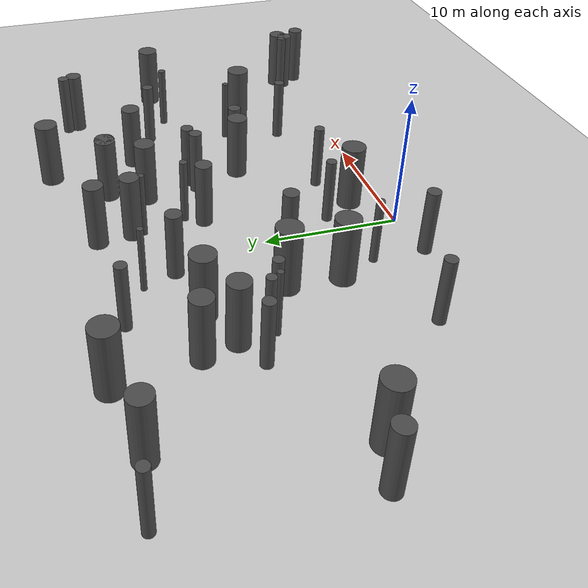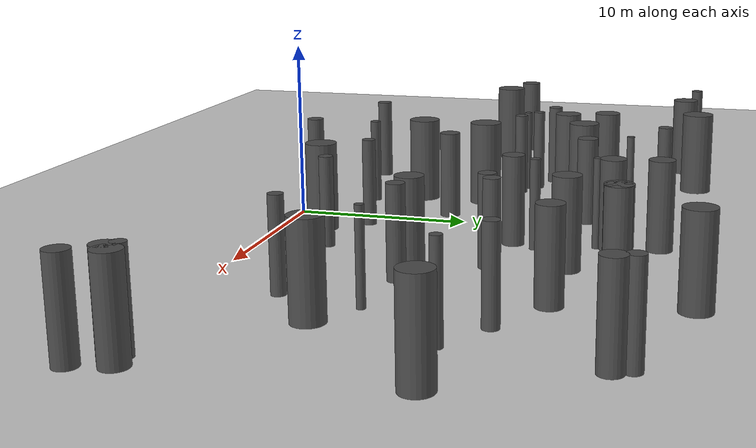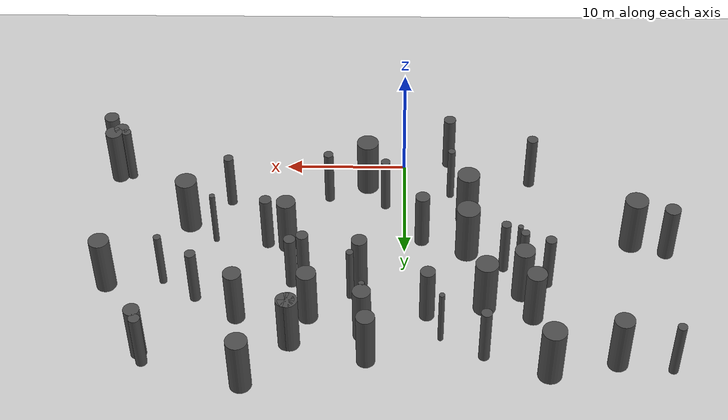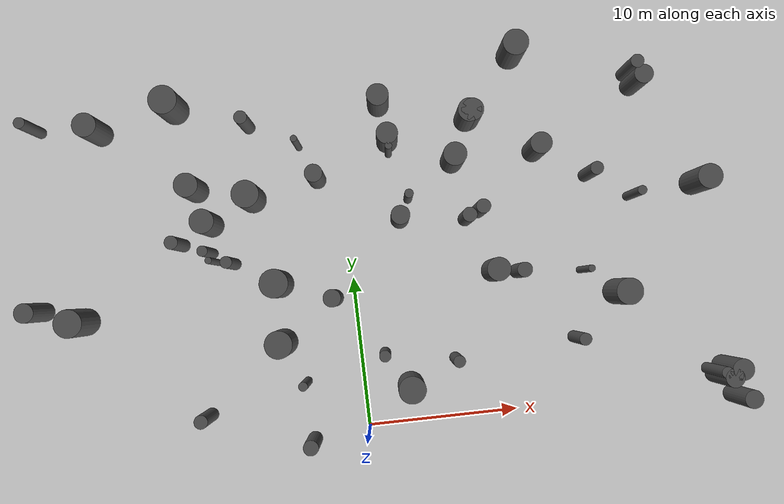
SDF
<sdf version="1.9">
 <world name="default">
  <model name="ground_plane">
   <static>true</static>
   <link name="link">
    <collision name="collision">
     <geometry><plane><normal>0 0 1</normal><size>1 1</size></plane></geometry>
    </collision>
    <visual name="visual">
     <geometry><plane><normal>0 0 1</normal><size>500 500</size></plane></geometry>
     <material>
      <ambient>0.8 0.8 0.8 1</ambient>
      <diffuse>0.8 0.8 0.8 1</diffuse>
      <specular>0.8 0.8 0.8 1</specular>
     </material>
    </visual>
    <inertial>
     <mass>1</mass>
     <inertia><ixx>1</ixx><ixy>0</ixy><ixz>0</ixz><iyy>1</iyy><iyz>0</iyz><izz>1</izz></inertia>
    </inertial>
   </link>
  </model>
  <model name="cylinder_3">
   <static>true</static>
   <pose>-21.10 10.03 2.50 0 0 0</pose>
   <link name="link">
    <collision name="collision">
     <geometry><cylinder><radius>0.64</radius><length>5.0</length></cylinder></geometry>
    </collision>
    <visual name="visual">
     <geometry><cylinder><radius>0.64</radius><length>5.0</length></cylinder></geometry>
     <material>
      <ambient>0.3 0.3 0.3 1</ambient>
      <diffuse>0.3 0.3 0.3 1</diffuse>
      <specular>0.1 0.1 0.1 1</specular>
     </material>
    </visual>
   </link>
  </model>
  <model name="cylinder_4">
   <static>true</static>
   <pose>-3.78 -0.53 2.50 0 0 0</pose>
   <link name="link">
    <collision name="collision">
     <geometry><cylinder><radius>0.50</radius><length>5.0</length></cylinder></geometry>
    </collision>
    <visual name="visual">
     <geometry><cylinder><radius>0.50</radius><length>5.0</length></cylinder></geometry>
     <material>
      <ambient>0.3 0.3 0.3 1</ambient>
      <diffuse>0.3 0.3 0.3 1</diffuse>
      <specular>0.1 0.1 0.1 1</specular>
     </material>
    </visual>
   </link>
  </model>
  <model name="cylinder_7">
   <static>true</static>
   <pose>-9.01 12.07 2.50 0 0 0</pose>
   <link name="link">
    <collision name="collision">
     <geometry><cylinder><radius>0.22</radius><length>5.0</length></cylinder></geometry>
    </collision>
    <visual name="visual">
     <geometry><cylinder><radius>0.22</radius><length>5.0</length></cylinder></geometry>
     <material>
      <ambient>0.3 0.3 0.3 1</ambient>
      <diffuse>0.3 0.3 0.3 1</diffuse>
      <specular>0.1 0.1 0.1 1</specular>
     </material>
    </visual>
   </link>
  </model>
  <model name="cylinder_8">
   <static>true</static>
   <pose>-10.56 1.88 2.50 0 0 0</pose>
   <link name="link">
    <collision name="collision">
     <geometry><cylinder><radius>0.45</radius><length>5.0</length></cylinder></geometry>
    </collision>
    <visual name="visual">
     <geometry><cylinder><radius>0.45</radius><length>5.0</length></cylinder></geometry>
     <material>
      <ambient>0.3 0.3 0.3 1</ambient>
      <diffuse>0.3 0.3 0.3 1</diffuse>
      <specular>0.1 0.1 0.1 1</specular>
     </material>
    </visual>
   </link>
  </model>
  <model name="cylinder_9">
   <static>true</static>
   <pose>-6.23 16.06 2.50 0 0 0</pose>
   <link name="link">
    <collision name="collision">
     <geometry><cylinder><radius>0.90</radius><length>5.0</length></cylinder></geometry>
    </collision>
    <visual name="visual">
     <geometry><cylinder><radius>0.90</radius><length>5.0</length></cylinder></geometry>
     <material>
      <ambient>0.3 0.3 0.3 1</ambient>
      <diffuse>0.3 0.3 0.3 1</diffuse>
      <specular>0.1 0.1 0.1 1</specular>
     </material>
    </visual>
   </link>
  </model>
  <model name="cylinder_10">
   <static>true</static>
   <pose>-6.00 21.02 2.50 0 0 0</pose>
   <link name="link">
    <collision name="collision">
     <geometry><cylinder><radius>0.43</radius><length>5.0</length></cylinder></geometry>
    </collision>
    <visual name="visual">
     <geometry><cylinder><radius>0.43</radius><length>5.0</length></cylinder></geometry>
     <material>
      <ambient>0.3 0.3 0.3 1</ambient>
      <diffuse>0.3 0.3 0.3 1</diffuse>
      <specular>0.1 0.1 0.1 1</specular>
     </material>
    </visual>
   </link>
  </model>
  <model name="cylinder_11">
   <static>true</static>
   <pose>-10.87 22.72 2.50 0 0 0</pose>
   <link name="link">
    <collision name="collision">
     <geometry><cylinder><radius>0.94</radius><length>5.0</length></cylinder></geometry>
    </collision>
    <visual name="visual">
     <geometry><cylinder><radius>0.94</radius><length>5.0</length></cylinder></geometry>
     <material>
      <ambient>0.3 0.3 0.3 1</ambient>
      <diffuse>0.3 0.3 0.3 1</diffuse>
      <specular>0.1 0.1 0.1 1</specular>
     </material>
    </visual>
   </link>
  </model>
  <model name="cylinder_14">
   <static>true</static>
   <pose>23.16 1.25 2.50 0 0 0</pose>
   <link name="link">
    <collision name="collision">
     <geometry><cylinder><radius>0.38</radius><length>5.0</length></cylinder></geometry>
    </collision>
    <visual name="visual">
     <geometry><cylinder><radius>0.38</radius><length>5.0</length></cylinder></geometry>
     <material>
      <ambient>0.3 0.3 0.3 1</ambient>
      <diffuse>0.3 0.3 0.3 1</diffuse>
      <specular>0.1 0.1 0.1 1</specular>
     </material>
    </visual>
   </link>
  </model>
  <model name="cylinder_15">
   <static>true</static>
   <pose>16.44 15.20 2.50 0 0 0</pose>
   <link name="link">
    <collision name="collision">
     <geometry><cylinder><radius>0.43</radius><length>5.0</length></cylinder></geometry>
    </collision>
    <visual name="visual">
     <geometry><cylinder><radius>0.43</radius><length>5.0</length></cylinder></geometry>
     <material>
      <ambient>0.3 0.3 0.3 1</ambient>
      <diffuse>0.3 0.3 0.3 1</diffuse>
      <specular>0.1 0.1 0.1 1</specular>
     </material>
    </visual>
   </link>
  </model>
  <model name="cylinder_16">
   <static>true</static>
   <pose>9.44 9.45 2.50 0 0 0</pose>
   <link name="link">
    <collision name="collision">
     <geometry><cylinder><radius>0.77</radius><length>5.0</length></cylinder></geometry>
    </collision>
    <visual name="visual">
     <geometry><cylinder><radius>0.77</radius><length>5.0</length></cylinder></geometry>
     <material>
      <ambient>0.3 0.3 0.3 1</ambient>
      <diffuse>0.3 0.3 0.3 1</diffuse>
      <specular>0.1 0.1 0.1 1</specular>
     </material>
    </visual>
   </link>
  </model>
  <model name="cylinder_17">
   <static>true</static>
   <pose>-2.74 19.27 2.50 0 0 0</pose>
   <link name="link">
    <collision name="collision">
     <geometry><cylinder><radius>0.22</radius><length>5.0</length></cylinder></geometry>
    </collision>
    <visual name="visual">
     <geometry><cylinder><radius>0.22</radius><length>5.0</length></cylinder></geometry>
     <material>
      <ambient>0.3 0.3 0.3 1</ambient>
      <diffuse>0.3 0.3 0.3 1</diffuse>
      <specular>0.1 0.1 0.1 1</specular>
     </material>
    </visual>
   </link>
  </model>
  <model name="cylinder_19">
   <static>true</static>
   <pose>-7.90 11.83 2.50 0 0 0</pose>
   <link name="link">
    <collision name="collision">
     <geometry><cylinder><radius>0.39</radius><length>5.0</length></cylinder></geometry>
    </collision>
    <visual name="visual">
     <geometry><cylinder><radius>0.39</radius><length>5.0</length></cylinder></geometry>
     <material>
      <ambient>0.3 0.3 0.3 1</ambient>
      <diffuse>0.3 0.3 0.3 1</diffuse>
      <specular>0.1 0.1 0.1 1</specular>
     </material>
    </visual>
   </link>
  </model>
  <model name="cylinder_20">
   <static>true</static>
   <pose>19.85 21.79 2.50 0 0 0</pose>
   <link name="link">
    <collision name="collision">
     <geometry><cylinder><radius>0.44</radius><length>5.0</length></cylinder></geometry>
    </collision>
    <visual name="visual">
     <geometry><cylinder><radius>0.44</radius><length>5.0</length></cylinder></geometry>
     <material>
      <ambient>0.3 0.3 0.3 1</ambient>
      <diffuse>0.3 0.3 0.3 1</diffuse>
      <specular>0.1 0.1 0.1 1</specular>
     </material>
    </visual>
   </link>
  </model>
  <model name="cylinder_21">
   <static>true</static>
   <pose>-1.72 16.91 2.50 0 0 0</pose>
   <link name="link">
    <collision name="collision">
     <geometry><cylinder><radius>0.59</radius><length>5.0</length></cylinder></geometry>
    </collision>
    <visual name="visual">
     <geometry><cylinder><radius>0.59</radius><length>5.0</length></cylinder></geometry>
     <material>
      <ambient>0.3 0.3 0.3 1</ambient>
      <diffuse>0.3 0.3 0.3 1</diffuse>
      <specular>0.1 0.1 0.1 1</specular>
     </material>
    </visual>
   </link>
  </model>
  <model name="cylinder_22">
   <static>true</static>
   <pose>4.25 14.92 2.50 0 0 0</pose>
   <link name="link">
    <collision name="collision">
     <geometry><cylinder><radius>0.29</radius><length>5.0</length></cylinder></geometry>
    </collision>
    <visual name="visual">
     <geometry><cylinder><radius>0.29</radius><length>5.0</length></cylinder></geometry>
     <material>
      <ambient>0.3 0.3 0.3 1</ambient>
      <diffuse>0.3 0.3 0.3 1</diffuse>
      <specular>0.1 0.1 0.1 1</specular>
     </material>
    </visual>
   </link>
  </model>
  <model name="cylinder_23">
   <static>true</static>
   <pose>1.57 4.73 2.50 0 0 0</pose>
   <link name="link">
    <collision name="collision">
     <geometry><cylinder><radius>0.38</radius><length>5.0</length></cylinder></geometry>
    </collision>
    <visual name="visual">
     <geometry><cylinder><radius>0.38</radius><length>5.0</length></cylinder></geometry>
     <material>
      <ambient>0.3 0.3 0.3 1</ambient>
      <diffuse>0.3 0.3 0.3 1</diffuse>
      <specular>0.1 0.1 0.1 1</specular>
     </material>
    </visual>
   </link>
  </model>
  <model name="cylinder_26">
   <static>true</static>
   <pose>-5.02 10.14 2.50 0 0 0</pose>
   <link name="link">
    <collision name="collision">
     <geometry><cylinder><radius>0.94</radius><length>5.0</length></cylinder></geometry>
    </collision>
    <visual name="visual">
     <geometry><cylinder><radius>0.94</radius><length>5.0</length></cylinder></geometry>
     <material>
      <ambient>0.3 0.3 0.3 1</ambient>
      <diffuse>0.3 0.3 0.3 1</diffuse>
      <specular>0.1 0.1 0.1 1</specular>
     </material>
    </visual>
   </link>
  </model>
  <model name="cylinder_29">
   <static>true</static>
   <pose>3.27 18.96 2.50 0 0 0</pose>
   <link name="link">
    <collision name="collision">
     <geometry><cylinder><radius>0.71</radius><length>5.0</length></cylinder></geometry>
    </collision>
    <visual name="visual">
     <geometry><cylinder><radius>0.71</radius><length>5.0</length></cylinder></geometry>
     <material>
      <ambient>0.3 0.3 0.3 1</ambient>
      <diffuse>0.3 0.3 0.3 1</diffuse>
      <specular>0.1 0.1 0.1 1</specular>
     </material>
    </visual>
   </link>
  </model>
  <model name="cylinder_31">
   <static>true</static>
   <pose>-16.06 21.65 2.50 0 0 0</pose>
   <link name="link">
    <collision name="collision">
     <geometry><cylinder><radius>0.79</radius><length>5.0</length></cylinder></geometry>
    </collision>
    <visual name="visual">
     <geometry><cylinder><radius>0.79</radius><length>5.0</length></cylinder></geometry>
     <material>
      <ambient>0.3 0.3 0.3 1</ambient>
      <diffuse>0.3 0.3 0.3 1</diffuse>
      <specular>0.1 0.1 0.1 1</specular>
     </material>
    </visual>
   </link>
  </model>
  <model name="cylinder_33">
   <static>true</static>
   <pose>20.17 20.92 2.50 0 0 0</pose>
   <link name="link">
    <collision name="collision">
     <geometry><cylinder><radius>0.62</radius><length>5.0</length></cylinder></geometry>
    </collision>
    <visual name="visual">
     <geometry><cylinder><radius>0.62</radius><length>5.0</length></cylinder></geometry>
     <material>
      <ambient>0.3 0.3 0.3 1</ambient>
      <diffuse>0.3 0.3 0.3 1</diffuse>
      <specular>0.1 0.1 0.1 1</specular>
     </material>
    </visual>
   </link>
  </model>
  <model name="cylinder_37">
   <static>true</static>
   <pose>-5.14 6.20 2.50 0 0 0</pose>
   <link name="link">
    <collision name="collision">
     <geometry><cylinder><radius>0.91</radius><length>5.0</length></cylinder></geometry>
    </collision>
    <visual name="visual">
     <geometry><cylinder><radius>0.91</radius><length>5.0</length></cylinder></geometry>
     <material>
      <ambient>0.3 0.3 0.3 1</ambient>
      <diffuse>0.3 0.3 0.3 1</diffuse>
      <specular>0.1 0.1 0.1 1</specular>
     </material>
    </visual>
   </link>
  </model>
  <model name="cylinder_39">
   <static>true</static>
   <pose>-9.34 12.72 2.50 0 0 0</pose>
   <link name="link">
    <collision name="collision">
     <geometry><cylinder><radius>0.35</radius><length>5.0</length></cylinder></geometry>
    </collision>
    <visual name="visual">
     <geometry><cylinder><radius>0.35</radius><length>5.0</length></cylinder></geometry>
     <material>
      <ambient>0.3 0.3 0.3 1</ambient>
      <diffuse>0.3 0.3 0.3 1</diffuse>
      <specular>0.1 0.1 0.1 1</specular>
     </material>
    </visual>
   </link>
  </model>
  <model name="cylinder_40">
   <static>true</static>
   <pose>19.16 13.46 2.50 0 0 0</pose>
   <link name="link">
    <collision name="collision">
     <geometry><cylinder><radius>0.30</radius><length>5.0</length></cylinder></geometry>
    </collision>
    <visual name="visual">
     <geometry><cylinder><radius>0.30</radius><length>5.0</length></cylinder></geometry>
     <material>
      <ambient>0.3 0.3 0.3 1</ambient>
      <diffuse>0.3 0.3 0.3 1</diffuse>
      <specular>0.1 0.1 0.1 1</specular>
     </material>
    </visual>
   </link>
  </model>
  <model name="cylinder_41">
   <static>true</static>
   <pose>24.63 -0.62 2.50 0 0 0</pose>
   <link name="link">
    <collision name="collision">
     <geometry><cylinder><radius>0.60</radius><length>5.0</length></cylinder></geometry>
    </collision>
    <visual name="visual">
     <geometry><cylinder><radius>0.60</radius><length>5.0</length></cylinder></geometry>
     <material>
      <ambient>0.3 0.3 0.3 1</ambient>
      <diffuse>0.3 0.3 0.3 1</diffuse>
      <specular>0.1 0.1 0.1 1</specular>
     </material>
    </visual>
   </link>
  </model>
  <model name="cylinder_42">
   <static>true</static>
   <pose>3.55 13.61 2.50 0 0 0</pose>
   <link name="link">
    <collision name="collision">
     <geometry><cylinder><radius>0.62</radius><length>5.0</length></cylinder></geometry>
    </collision>
    <visual name="visual">
     <geometry><cylinder><radius>0.62</radius><length>5.0</length></cylinder></geometry>
     <material>
      <ambient>0.3 0.3 0.3 1</ambient>
      <diffuse>0.3 0.3 0.3 1</diffuse>
      <specular>0.1 0.1 0.1 1</specular>
     </material>
    </visual>
   </link>
  </model>
  <model name="cylinder_46">
   <static>true</static>
   <pose>-3.85 3.39 2.50 0 0 0</pose>
   <link name="link">
    <collision name="collision">
     <geometry><cylinder><radius>0.30</radius><length>5.0</length></cylinder></geometry>
    </collision>
    <visual name="visual">
     <geometry><cylinder><radius>0.30</radius><length>5.0</length></cylinder></geometry>
     <material>
      <ambient>0.3 0.3 0.3 1</ambient>
      <diffuse>0.3 0.3 0.3 1</diffuse>
      <specular>0.1 0.1 0.1 1</specular>
     </material>
    </visual>
   </link>
  </model>
  <model name="cylinder_47">
   <static>true</static>
   <pose>13.08 17.22 2.50 0 0 0</pose>
   <link name="link">
    <collision name="collision">
     <geometry><cylinder><radius>0.71</radius><length>5.0</length></cylinder></geometry>
    </collision>
    <visual name="visual">
     <geometry><cylinder><radius>0.71</radius><length>5.0</length></cylinder></geometry>
     <material>
      <ambient>0.3 0.3 0.3 1</ambient>
      <diffuse>0.3 0.3 0.3 1</diffuse>
      <specular>0.1 0.1 0.1 1</specular>
     </material>
    </visual>
   </link>
  </model>
  <model name="cylinder_49">
   <static>true</static>
   <pose>-11.27 13.48 2.50 0 0 0</pose>
   <link name="link">
    <collision name="collision">
     <geometry><cylinder><radius>0.44</radius><length>5.0</length></cylinder></geometry>
    </collision>
    <visual name="visual">
     <geometry><cylinder><radius>0.44</radius><length>5.0</length></cylinder></geometry>
     <material>
      <ambient>0.3 0.3 0.3 1</ambient>
      <diffuse>0.3 0.3 0.3 1</diffuse>
      <specular>0.1 0.1 0.1 1</specular>
     </material>
    </visual>
   </link>
  </model>
  <model name="cylinder_52">
   <static>true</static>
   <pose>8.94 19.87 2.50 0 0 0</pose>
   <link name="link">
    <collision name="collision">
     <geometry><cylinder><radius>0.73</radius><length>5.0</length></cylinder></geometry>
    </collision>
    <visual name="visual">
     <geometry><cylinder><radius>0.73</radius><length>5.0</length></cylinder></geometry>
     <material>
      <ambient>0.3 0.3 0.3 1</ambient>
      <diffuse>0.3 0.3 0.3 1</diffuse>
      <specular>0.1 0.1 0.1 1</specular>
     </material>
    </visual>
   </link>
  </model>
  <model name="cylinder_56">
   <static>true</static>
   <pose>3.28 18.13 2.50 0 0 0</pose>
   <link name="link">
    <collision name="collision">
     <geometry><cylinder><radius>0.23</radius><length>5.0</length></cylinder></geometry>
    </collision>
    <visual name="visual">
     <geometry><cylinder><radius>0.23</radius><length>5.0</length></cylinder></geometry>
     <material>
      <ambient>0.3 0.3 0.3 1</ambient>
      <diffuse>0.3 0.3 0.3 1</diffuse>
      <specular>0.1 0.1 0.1 1</specular>
     </material>
    </visual>
   </link>
  </model>
  <model name="cylinder_61">
   <static>true</static>
   <pose>6.25 3.86 2.50 0 0 0</pose>
   <link name="link">
    <collision name="collision">
     <geometry><cylinder><radius>0.39</radius><length>5.0</length></cylinder></geometry>
    </collision>
    <visual name="visual">
     <geometry><cylinder><radius>0.39</radius><length>5.0</length></cylinder></geometry>
     <material>
      <ambient>0.3 0.3 0.3 1</ambient>
      <diffuse>0.3 0.3 0.3 1</diffuse>
      <specular>0.1 0.1 0.1 1</specular>
     </material>
    </visual>
   </link>
  </model>
  <model name="cylinder_62">
   <static>true</static>
   <pose>8.92 13.58 2.50 0 0 0</pose>
   <link name="link">
    <collision name="collision">
     <geometry><cylinder><radius>0.47</radius><length>5.0</length></cylinder></geometry>
    </collision>
    <visual name="visual">
     <geometry><cylinder><radius>0.47</radius><length>5.0</length></cylinder></geometry>
     <material>
      <ambient>0.3 0.3 0.3 1</ambient>
      <diffuse>0.3 0.3 0.3 1</diffuse>
      <specular>0.1 0.1 0.1 1</specular>
     </material>
    </visual>
   </link>
  </model>
  <model name="cylinder_65">
   <static>true</static>
   <pose>17.60 7.10 2.50 0 0 0</pose>
   <link name="link">
    <collision name="collision">
     <geometry><cylinder><radius>0.87</radius><length>5.0</length></cylinder></geometry>
    </collision>
    <visual name="visual">
     <geometry><cylinder><radius>0.87</radius><length>5.0</length></cylinder></geometry>
     <material>
      <ambient>0.3 0.3 0.3 1</ambient>
      <diffuse>0.3 0.3 0.3 1</diffuse>
      <specular>0.1 0.1 0.1 1</specular>
     </material>
    </visual>
   </link>
  </model>
  <model name="cylinder_66">
   <static>true</static>
   <pose>23.62 13.87 2.50 0 0 0</pose>
   <link name="link">
    <collision name="collision">
     <geometry><cylinder><radius>0.81</radius><length>5.0</length></cylinder></geometry>
    </collision>
    <visual name="visual">
     <geometry><cylinder><radius>0.81</radius><length>5.0</length></cylinder></geometry>
     <material>
      <ambient>0.3 0.3 0.3 1</ambient>
      <diffuse>0.3 0.3 0.3 1</diffuse>
      <specular>0.1 0.1 0.1 1</specular>
     </material>
    </visual>
   </link>
  </model>
  <model name="cylinder_67">
   <static>true</static>
   <pose>11.08 9.23 2.50 0 0 0</pose>
   <link name="link">
    <collision name="collision">
     <geometry><cylinder><radius>0.49</radius><length>5.0</length></cylinder></geometry>
    </collision>
    <visual name="visual">
     <geometry><cylinder><radius>0.49</radius><length>5.0</length></cylinder></geometry>
     <material>
      <ambient>0.3 0.3 0.3 1</ambient>
      <diffuse>0.3 0.3 0.3 1</diffuse>
      <specular>0.1 0.1 0.1 1</specular>
     </material>
    </visual>
   </link>
  </model>
  <model name="cylinder_77">
   <static>true</static>
   <pose>24.19 1.33 2.50 0 0 0</pose>
   <link name="link">
    <collision name="collision">
     <geometry><cylinder><radius>0.70</radius><length>5.0</length></cylinder></geometry>
    </collision>
    <visual name="visual">
     <geometry><cylinder><radius>0.70</radius><length>5.0</length></cylinder></geometry>
     <material>
      <ambient>0.3 0.3 0.3 1</ambient>
      <diffuse>0.3 0.3 0.3 1</diffuse>
      <specular>0.1 0.1 0.1 1</specular>
     </material>
    </visual>
   </link>
  </model>
  <model name="cylinder_79">
   <static>true</static>
   <pose>-1.41 8.79 2.50 0 0 0</pose>
   <link name="link">
    <collision name="collision">
     <geometry><cylinder><radius>0.58</radius><length>5.0</length></cylinder></geometry>
    </collision>
    <visual name="visual">
     <geometry><cylinder><radius>0.58</radius><length>5.0</length></cylinder></geometry>
     <material>
      <ambient>0.3 0.3 0.3 1</ambient>
      <diffuse>0.3 0.3 0.3 1</diffuse>
      <specular>0.1 0.1 0.1 1</specular>
     </material>
    </visual>
   </link>
  </model>
  <model name="cylinder_80">
   <static>true</static>
   <pose>23.60 0.85 2.50 0 0 0</pose>
   <link name="link">
    <collision name="collision">
     <geometry><cylinder><radius>0.62</radius><length>5.0</length></cylinder></geometry>
    </collision>
    <visual name="visual">
     <geometry><cylinder><radius>0.62</radius><length>5.0</length></cylinder></geometry>
     <material>
      <ambient>0.3 0.3 0.3 1</ambient>
      <diffuse>0.3 0.3 0.3 1</diffuse>
      <specular>0.1 0.1 0.1 1</specular>
     </material>
    </visual>
   </link>
  </model>
  <model name="cylinder_81">
   <static>true</static>
   <pose>7.49 17.13 2.50 0 0 0</pose>
   <link name="link">
    <collision name="collision">
     <geometry><cylinder><radius>0.77</radius><length>5.0</length></cylinder></geometry>
    </collision>
    <visual name="visual">
     <geometry><cylinder><radius>0.77</radius><length>5.0</length></cylinder></geometry>
     <material>
      <ambient>0.3 0.3 0.3 1</ambient>
      <diffuse>0.3 0.3 0.3 1</diffuse>
      <specular>0.1 0.1 0.1 1</specular>
     </material>
    </visual>
   </link>
  </model>
  <model name="cylinder_82">
   <static>true</static>
   <pose>14.41 4.38 2.50 0 0 0</pose>
   <link name="link">
    <collision name="collision">
     <geometry><cylinder><radius>0.40</radius><length>5.0</length></cylinder></geometry>
    </collision>
    <visual name="visual">
     <geometry><cylinder><radius>0.40</radius><length>5.0</length></cylinder></geometry>
     <material>
      <ambient>0.3 0.3 0.3 1</ambient>
      <diffuse>0.3 0.3 0.3 1</diffuse>
      <specular>0.1 0.1 0.1 1</specular>
     </material>
    </visual>
   </link>
  </model>
  <model name="cylinder_83">
   <static>true</static>
   <pose>-18.38 9.05 2.50 0 0 0</pose>
   <link name="link">
    <collision name="collision">
     <geometry><cylinder><radius>0.93</radius><length>5.0</length></cylinder></geometry>
    </collision>
    <visual name="visual">
     <geometry><cylinder><radius>0.93</radius><length>5.0</length></cylinder></geometry>
     <material>
      <ambient>0.3 0.3 0.3 1</ambient>
      <diffuse>0.3 0.3 0.3 1</diffuse>
      <specular>0.1 0.1 0.1 1</specular>
     </material>
    </visual>
   </link>
  </model>
  <model name="cylinder_84">
   <static>true</static>
   <pose>-9.96 17.06 2.50 0 0 0</pose>
   <link name="link">
    <collision name="collision">
     <geometry><cylinder><radius>0.79</radius><length>5.0</length></cylinder></geometry>
    </collision>
    <visual name="visual">
     <geometry><cylinder><radius>0.79</radius><length>5.0</length></cylinder></geometry>
     <material>
      <ambient>0.3 0.3 0.3 1</ambient>
      <diffuse>0.3 0.3 0.3 1</diffuse>
      <specular>0.1 0.1 0.1 1</specular>
     </material>
    </visual>
   </link>
  </model>
  <model name="cylinder_86">
   <static>true</static>
   <pose>7.98 13.14 2.50 0 0 0</pose>
   <link name="link">
    <collision name="collision">
     <geometry><cylinder><radius>0.48</radius><length>5.0</length></cylinder></geometry>
    </collision>
    <visual name="visual">
     <geometry><cylinder><radius>0.48</radius><length>5.0</length></cylinder></geometry>
     <material>
      <ambient>0.3 0.3 0.3 1</ambient>
      <diffuse>0.3 0.3 0.3 1</diffuse>
      <specular>0.1 0.1 0.1 1</specular>
     </material>
    </visual>
   </link>
  </model>
  <model name="cylinder_90">
   <static>true</static>
   <pose>-9.19 14.63 2.50 0 0 0</pose>
   <link name="link">
    <collision name="collision">
     <geometry><cylinder><radius>0.80</radius><length>5.0</length></cylinder></geometry>
    </collision>
    <visual name="visual">
     <geometry><cylinder><radius>0.80</radius><length>5.0</length></cylinder></geometry>
     <material>
      <ambient>0.3 0.3 0.3 1</ambient>
      <diffuse>0.3 0.3 0.3 1</diffuse>
      <specular>0.1 0.1 0.1 1</specular>
     </material>
    </visual>
   </link>
  </model>
  <model name="cylinder_91">
   <static>true</static>
   <pose>12.21 23.89 2.50 0 0 0</pose>
   <link name="link">
    <collision name="collision">
     <geometry><cylinder><radius>0.85</radius><length>5.0</length></cylinder></geometry>
    </collision>
    <visual name="visual">
     <geometry><cylinder><radius>0.85</radius><length>5.0</length></cylinder></geometry>
     <material>
      <ambient>0.3 0.3 0.3 1</ambient>
      <diffuse>0.3 0.3 0.3 1</diffuse>
      <specular>0.1 0.1 0.1 1</specular>
     </material>
    </visual>
   </link>
  </model>
  <model name="cylinder_92">
   <static>true</static>
   <pose>3.06 2.39 2.50 0 0 0</pose>
   <link name="link">
    <collision name="collision">
     <geometry><cylinder><radius>0.89</radius><length>5.0</length></cylinder></geometry>
    </collision>
    <visual name="visual">
     <geometry><cylinder><radius>0.89</radius><length>5.0</length></cylinder></geometry>
     <material>
      <ambient>0.3 0.3 0.3 1</ambient>
      <diffuse>0.3 0.3 0.3 1</diffuse>
      <specular>0.1 0.1 0.1 1</specular>
     </material>
    </visual>
   </link>
  </model>
  <model name="cylinder_96">
   <static>true</static>
   <pose>8.75 19.87 2.50 0 0 0</pose>
   <link name="link">
    <collision name="collision">
     <geometry><cylinder><radius>0.77</radius><length>5.0</length></cylinder></geometry>
    </collision>
    <visual name="visual">
     <geometry><cylinder><radius>0.77</radius><length>5.0</length></cylinder></geometry>
     <material>
      <ambient>0.3 0.3 0.3 1</ambient>
      <diffuse>0.3 0.3 0.3 1</diffuse>
      <specular>0.1 0.1 0.1 1</specular>
     </material>
    </visual>
   </link>
  </model>
  <model name="cylinder_97">
   <static>true</static>
   <pose>-20.18 22.24 2.50 0 0 0</pose>
   <link name="link">
    <collision name="collision">
     <geometry><cylinder><radius>0.37</radius><length>5.0</length></cylinder></geometry>
    </collision>
    <visual name="visual">
     <geometry><cylinder><radius>0.37</radius><length>5.0</length></cylinder></geometry>
     <material>
      <ambient>0.3 0.3 0.3 1</ambient>
      <diffuse>0.3 0.3 0.3 1</diffuse>
      <specular>0.1 0.1 0.1 1</specular>
     </material>
    </visual>
   </link>
  </model>
  <model name="cylinder_98">
   <static>true</static>
   <pose>2.94 21.50 2.50 0 0 0</pose>
   <link name="link">
    <collision name="collision">
     <geometry><cylinder><radius>0.72</radius><length>5.0</length></cylinder></geometry>
    </collision>
    <visual name="visual">
     <geometry><cylinder><radius>0.72</radius><length>5.0</length></cylinder></geometry>
     <material>
      <ambient>0.3 0.3 0.3 1</ambient>
      <diffuse>0.3 0.3 0.3 1</diffuse>
      <specular>0.1 0.1 0.1 1</specular>
     </material>
    </visual>
   </link>
  </model>
  <model name="cylinder_99">
   <static>true</static>
   <pose>15.34 8.83 2.50 0 0 0</pose>
   <link name="link">
    <collision name="collision">
     <geometry><cylinder><radius>0.23</radius><length>5.0</length></cylinder></geometry>
    </collision>
    <visual name="visual">
     <geometry><cylinder><radius>0.23</radius><length>5.0</length></cylinder></geometry>
     <material>
      <ambient>0.3 0.3 0.3 1</ambient>
      <diffuse>0.3 0.3 0.3 1</diffuse>
      <specular>0.1 0.1 0.1 1</specular>
     </material>
    </visual>
   </link>
  </model>
 </world>
</sdf>
